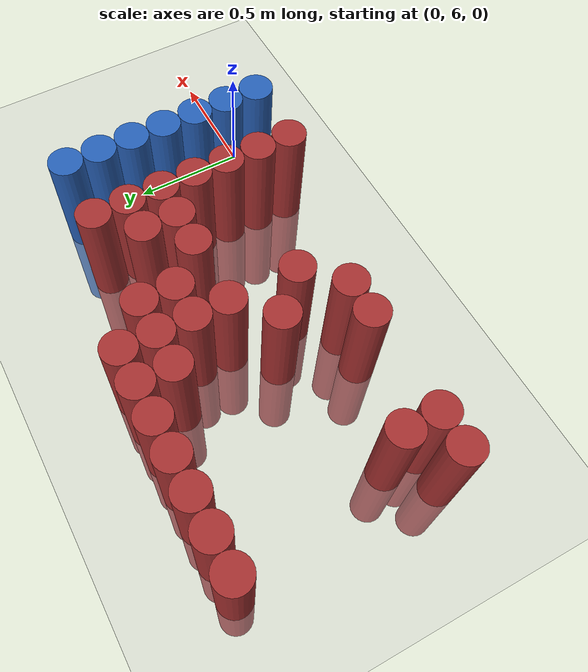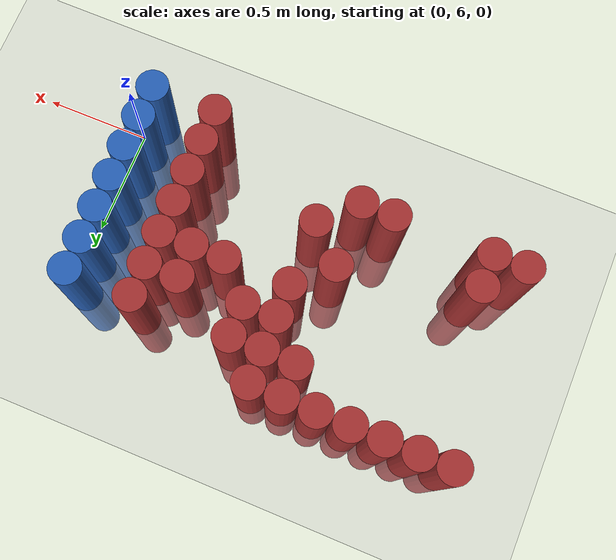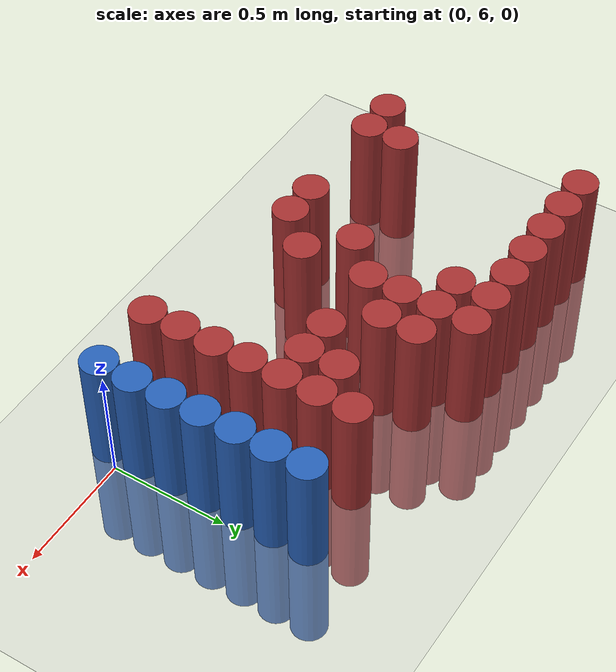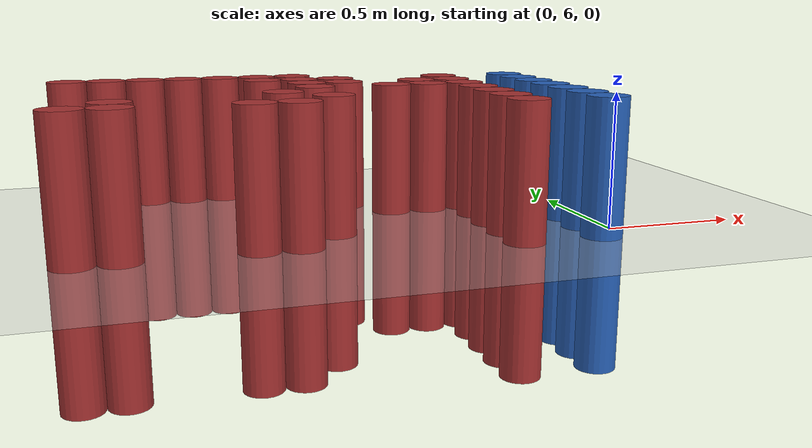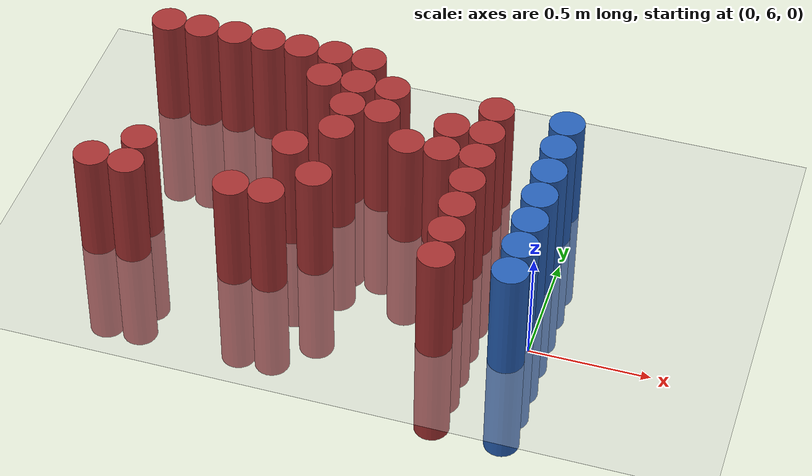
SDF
<sdf version="1.6">
 <world name="default">
  <model name="ground_plane">
   <static>1</static>
   <link name="link">
    <collision name="collision">
     <geometry><plane><normal>0 0 1</normal><size>100 100</size></plane></geometry>
     <surface><friction><ode><mu>100</mu><mu2>50</mu2></ode></friction></surface>
    </collision>
    <visual name="visual">
     <cast_shadows>0</cast_shadows>
     <geometry><plane><normal>0 0 1</normal><size>100 100</size></plane></geometry>
     <material>
      <script><uri>file://media/materials/scripts/gazebo.material</uri><name>Gazebo/Grey</name></script>
     </material>
    </visual>
   </link>
  </model>
  <model name="unit_cylinder_201">
   <static>1</static>
   <pose>-1.875000 6.075000 0.000000 0.000000 0.000000 0.000000</pose>
   <link name="link">
    <inertial>
     <mass>1</mass>
     <inertia><ixx>0.145833</ixx><ixy>0</ixy><ixz>0</ixz><iyy>0.145833</iyy><iyz>0</iyz><izz>0.125</izz></inertia>
    </inertial>
    <collision name="collision">
     <geometry><cylinder><radius>0.075000</radius><length>1</length></cylinder></geometry>
    </collision>
    <visual name="visual">
     <geometry><cylinder><radius>0.075000</radius><length>1</length></cylinder></geometry>
     <material>
      <ambient>0.648000 0.192000 0.192000 1</ambient>
      <diffuse>0.648000 0.192000 0.192000 1</diffuse>
     </material>
     <material>
      <script><name>Gazebo/Grey</name><uri>file://media/materials/scripts/gazebo.material</uri></script>
     </material>
    </visual>
    <sensor name="sensor_contact" type="contact"><contact><collision>collision</collision></contact></sensor>
   </link>
   <plugin filename="gz-sim-touchplugin-system" name="gz::sim::systems::TouchPlugin">
    <target>robot</target>
    <namespace>robot</namespace>
    <time>0.001</time>
    <enabled>true</enabled>
   </plugin>
  </model>
  <model name="unit_cylinder_202">
   <static>1</static>
   <pose>-1.875000 6.975000 0.000000 0.000000 0.000000 0.000000</pose>
   <link name="link">
    <inertial>
     <mass>1</mass>
     <inertia><ixx>0.145833</ixx><ixy>0</ixy><ixz>0</ixz><iyy>0.145833</iyy><iyz>0</iyz><izz>0.125</izz></inertia>
    </inertial>
    <collision name="collision">
     <geometry><cylinder><radius>0.075000</radius><length>1</length></cylinder></geometry>
    </collision>
    <visual name="visual">
     <geometry><cylinder><radius>0.075000</radius><length>1</length></cylinder></geometry>
     <material>
      <ambient>0.648000 0.192000 0.192000 1</ambient>
      <diffuse>0.648000 0.192000 0.192000 1</diffuse>
     </material>
     <material>
      <script><name>Gazebo/Grey</name><uri>file://media/materials/scripts/gazebo.material</uri></script>
     </material>
    </visual>
    <sensor name="sensor_contact" type="contact"><contact><collision>collision</collision></contact></sensor>
   </link>
   <plugin filename="gz-sim-touchplugin-system" name="gz::sim::systems::TouchPlugin">
    <target>robot</target>
    <namespace>robot</namespace>
    <time>0.001</time>
    <enabled>true</enabled>
   </plugin>
  </model>
  <model name="unit_cylinder_208">
   <static>1</static>
   <pose>-1.725000 6.075000 0.000000 0.000000 0.000000 0.000000</pose>
   <link name="link">
    <inertial>
     <mass>1</mass>
     <inertia><ixx>0.145833</ixx><ixy>0</ixy><ixz>0</ixz><iyy>0.145833</iyy><iyz>0</iyz><izz>0.125</izz></inertia>
    </inertial>
    <collision name="collision">
     <geometry><cylinder><radius>0.075000</radius><length>1</length></cylinder></geometry>
    </collision>
    <visual name="visual">
     <geometry><cylinder><radius>0.075000</radius><length>1</length></cylinder></geometry>
     <material>
      <ambient>0.648000 0.192000 0.192000 1</ambient>
      <diffuse>0.648000 0.192000 0.192000 1</diffuse>
     </material>
     <material>
      <script><name>Gazebo/Grey</name><uri>file://media/materials/scripts/gazebo.material</uri></script>
     </material>
    </visual>
    <sensor name="sensor_contact" type="contact"><contact><collision>collision</collision></contact></sensor>
   </link>
   <plugin filename="gz-sim-touchplugin-system" name="gz::sim::systems::TouchPlugin">
    <target>robot</target>
    <namespace>robot</namespace>
    <time>0.001</time>
    <enabled>true</enabled>
   </plugin>
  </model>
  <model name="unit_cylinder_209">
   <static>1</static>
   <pose>-1.725000 6.225000 0.000000 0.000000 0.000000 0.000000</pose>
   <link name="link">
    <inertial>
     <mass>1</mass>
     <inertia><ixx>0.145833</ixx><ixy>0</ixy><ixz>0</ixz><iyy>0.145833</iyy><iyz>0</iyz><izz>0.125</izz></inertia>
    </inertial>
    <collision name="collision">
     <geometry><cylinder><radius>0.075000</radius><length>1</length></cylinder></geometry>
    </collision>
    <visual name="visual">
     <geometry><cylinder><radius>0.075000</radius><length>1</length></cylinder></geometry>
     <material>
      <ambient>0.648000 0.192000 0.192000 1</ambient>
      <diffuse>0.648000 0.192000 0.192000 1</diffuse>
     </material>
     <material>
      <script><name>Gazebo/Grey</name><uri>file://media/materials/scripts/gazebo.material</uri></script>
     </material>
    </visual>
    <sensor name="sensor_contact" type="contact"><contact><collision>collision</collision></contact></sensor>
   </link>
   <plugin filename="gz-sim-touchplugin-system" name="gz::sim::systems::TouchPlugin">
    <target>robot</target>
    <namespace>robot</namespace>
    <time>0.001</time>
    <enabled>true</enabled>
   </plugin>
  </model>
  <model name="unit_cylinder_210">
   <static>1</static>
   <pose>-1.725000 6.975000 0.000000 0.000000 0.000000 0.000000</pose>
   <link name="link">
    <inertial>
     <mass>1</mass>
     <inertia><ixx>0.145833</ixx><ixy>0</ixy><ixz>0</ixz><iyy>0.145833</iyy><iyz>0</iyz><izz>0.125</izz></inertia>
    </inertial>
    <collision name="collision">
     <geometry><cylinder><radius>0.075000</radius><length>1</length></cylinder></geometry>
    </collision>
    <visual name="visual">
     <geometry><cylinder><radius>0.075000</radius><length>1</length></cylinder></geometry>
     <material>
      <ambient>0.648000 0.192000 0.192000 1</ambient>
      <diffuse>0.648000 0.192000 0.192000 1</diffuse>
     </material>
     <material>
      <script><name>Gazebo/Grey</name><uri>file://media/materials/scripts/gazebo.material</uri></script>
     </material>
    </visual>
    <sensor name="sensor_contact" type="contact"><contact><collision>collision</collision></contact></sensor>
   </link>
   <plugin filename="gz-sim-touchplugin-system" name="gz::sim::systems::TouchPlugin">
    <target>robot</target>
    <namespace>robot</namespace>
    <time>0.001</time>
    <enabled>true</enabled>
   </plugin>
  </model>
  <model name="unit_cylinder_216">
   <static>1</static>
   <pose>-1.575000 6.975000 0.000000 0.000000 0.000000 0.000000</pose>
   <link name="link">
    <inertial>
     <mass>1</mass>
     <inertia><ixx>0.145833</ixx><ixy>0</ixy><ixz>0</ixz><iyy>0.145833</iyy><iyz>0</iyz><izz>0.125</izz></inertia>
    </inertial>
    <collision name="collision">
     <geometry><cylinder><radius>0.075000</radius><length>1</length></cylinder></geometry>
    </collision>
    <visual name="visual">
     <geometry><cylinder><radius>0.075000</radius><length>1</length></cylinder></geometry>
     <material>
      <ambient>0.648000 0.192000 0.192000 1</ambient>
      <diffuse>0.648000 0.192000 0.192000 1</diffuse>
     </material>
     <material>
      <script><name>Gazebo/Grey</name><uri>file://media/materials/scripts/gazebo.material</uri></script>
     </material>
    </visual>
    <sensor name="sensor_contact" type="contact"><contact><collision>collision</collision></contact></sensor>
   </link>
   <plugin filename="gz-sim-touchplugin-system" name="gz::sim::systems::TouchPlugin">
    <target>robot</target>
    <namespace>robot</namespace>
    <time>0.001</time>
    <enabled>true</enabled>
   </plugin>
  </model>
  <model name="unit_cylinder_226">
   <static>1</static>
   <pose>-1.425000 6.975000 0.000000 0.000000 0.000000 0.000000</pose>
   <link name="link">
    <inertial>
     <mass>1</mass>
     <inertia><ixx>0.145833</ixx><ixy>0</ixy><ixz>0</ixz><iyy>0.145833</iyy><iyz>0</iyz><izz>0.125</izz></inertia>
    </inertial>
    <collision name="collision">
     <geometry><cylinder><radius>0.075000</radius><length>1</length></cylinder></geometry>
    </collision>
    <visual name="visual">
     <geometry><cylinder><radius>0.075000</radius><length>1</length></cylinder></geometry>
     <material>
      <ambient>0.648000 0.192000 0.192000 1</ambient>
      <diffuse>0.648000 0.192000 0.192000 1</diffuse>
     </material>
     <material>
      <script><name>Gazebo/Grey</name><uri>file://media/materials/scripts/gazebo.material</uri></script>
     </material>
    </visual>
    <sensor name="sensor_contact" type="contact"><contact><collision>collision</collision></contact></sensor>
   </link>
   <plugin filename="gz-sim-touchplugin-system" name="gz::sim::systems::TouchPlugin">
    <target>robot</target>
    <namespace>robot</namespace>
    <time>0.001</time>
    <enabled>true</enabled>
   </plugin>
  </model>
  <model name="unit_cylinder_231">
   <static>1</static>
   <pose>-1.275000 6.075000 0.000000 0.000000 0.000000 0.000000</pose>
   <link name="link">
    <inertial>
     <mass>1</mass>
     <inertia><ixx>0.145833</ixx><ixy>0</ixy><ixz>0</ixz><iyy>0.145833</iyy><iyz>0</iyz><izz>0.125</izz></inertia>
    </inertial>
    <collision name="collision">
     <geometry><cylinder><radius>0.075000</radius><length>1</length></cylinder></geometry>
    </collision>
    <visual name="visual">
     <geometry><cylinder><radius>0.075000</radius><length>1</length></cylinder></geometry>
     <material>
      <ambient>0.648000 0.192000 0.192000 1</ambient>
      <diffuse>0.648000 0.192000 0.192000 1</diffuse>
     </material>
     <material>
      <script><name>Gazebo/Grey</name><uri>file://media/materials/scripts/gazebo.material</uri></script>
     </material>
    </visual>
    <sensor name="sensor_contact" type="contact"><contact><collision>collision</collision></contact></sensor>
   </link>
   <plugin filename="gz-sim-touchplugin-system" name="gz::sim::systems::TouchPlugin">
    <target>robot</target>
    <namespace>robot</namespace>
    <time>0.001</time>
    <enabled>true</enabled>
   </plugin>
  </model>
  <model name="unit_cylinder_232">
   <static>1</static>
   <pose>-1.275000 6.975000 0.000000 0.000000 0.000000 0.000000</pose>
   <link name="link">
    <inertial>
     <mass>1</mass>
     <inertia><ixx>0.145833</ixx><ixy>0</ixy><ixz>0</ixz><iyy>0.145833</iyy><iyz>0</iyz><izz>0.125</izz></inertia>
    </inertial>
    <collision name="collision">
     <geometry><cylinder><radius>0.075000</radius><length>1</length></cylinder></geometry>
    </collision>
    <visual name="visual">
     <geometry><cylinder><radius>0.075000</radius><length>1</length></cylinder></geometry>
     <material>
      <ambient>0.648000 0.192000 0.192000 1</ambient>
      <diffuse>0.648000 0.192000 0.192000 1</diffuse>
     </material>
     <material>
      <script><name>Gazebo/Grey</name><uri>file://media/materials/scripts/gazebo.material</uri></script>
     </material>
    </visual>
    <sensor name="sensor_contact" type="contact"><contact><collision>collision</collision></contact></sensor>
   </link>
   <plugin filename="gz-sim-touchplugin-system" name="gz::sim::systems::TouchPlugin">
    <target>robot</target>
    <namespace>robot</namespace>
    <time>0.001</time>
    <enabled>true</enabled>
   </plugin>
  </model>
  <model name="unit_cylinder_236">
   <static>1</static>
   <pose>-1.125000 6.075000 0.000000 0.000000 0.000000 0.000000</pose>
   <link name="link">
    <inertial>
     <mass>1</mass>
     <inertia><ixx>0.145833</ixx><ixy>0</ixy><ixz>0</ixz><iyy>0.145833</iyy><iyz>0</iyz><izz>0.125</izz></inertia>
    </inertial>
    <collision name="collision">
     <geometry><cylinder><radius>0.075000</radius><length>1</length></cylinder></geometry>
    </collision>
    <visual name="visual">
     <geometry><cylinder><radius>0.075000</radius><length>1</length></cylinder></geometry>
     <material>
      <ambient>0.648000 0.192000 0.192000 1</ambient>
      <diffuse>0.648000 0.192000 0.192000 1</diffuse>
     </material>
     <material>
      <script><name>Gazebo/Grey</name><uri>file://media/materials/scripts/gazebo.material</uri></script>
     </material>
    </visual>
    <sensor name="sensor_contact" type="contact"><contact><collision>collision</collision></contact></sensor>
   </link>
   <plugin filename="gz-sim-touchplugin-system" name="gz::sim::systems::TouchPlugin">
    <target>robot</target>
    <namespace>robot</namespace>
    <time>0.001</time>
    <enabled>true</enabled>
   </plugin>
  </model>
  <model name="unit_cylinder_237">
   <static>1</static>
   <pose>-1.125000 6.375000 0.000000 0.000000 0.000000 0.000000</pose>
   <link name="link">
    <inertial>
     <mass>1</mass>
     <inertia><ixx>0.145833</ixx><ixy>0</ixy><ixz>0</ixz><iyy>0.145833</iyy><iyz>0</iyz><izz>0.125</izz></inertia>
    </inertial>
    <collision name="collision">
     <geometry><cylinder><radius>0.075000</radius><length>1</length></cylinder></geometry>
    </collision>
    <visual name="visual">
     <geometry><cylinder><radius>0.075000</radius><length>1</length></cylinder></geometry>
     <material>
      <ambient>0.648000 0.192000 0.192000 1</ambient>
      <diffuse>0.648000 0.192000 0.192000 1</diffuse>
     </material>
     <material>
      <script><name>Gazebo/Grey</name><uri>file://media/materials/scripts/gazebo.material</uri></script>
     </material>
    </visual>
    <sensor name="sensor_contact" type="contact"><contact><collision>collision</collision></contact></sensor>
   </link>
   <plugin filename="gz-sim-touchplugin-system" name="gz::sim::systems::TouchPlugin">
    <target>robot</target>
    <namespace>robot</namespace>
    <time>0.001</time>
    <enabled>true</enabled>
   </plugin>
  </model>
  <model name="unit_cylinder_238">
   <static>1</static>
   <pose>-1.125000 6.825000 0.000000 0.000000 0.000000 0.000000</pose>
   <link name="link">
    <inertial>
     <mass>1</mass>
     <inertia><ixx>0.145833</ixx><ixy>0</ixy><ixz>0</ixz><iyy>0.145833</iyy><iyz>0</iyz><izz>0.125</izz></inertia>
    </inertial>
    <collision name="collision">
     <geometry><cylinder><radius>0.075000</radius><length>1</length></cylinder></geometry>
    </collision>
    <visual name="visual">
     <geometry><cylinder><radius>0.075000</radius><length>1</length></cylinder></geometry>
     <material>
      <ambient>0.648000 0.192000 0.192000 1</ambient>
      <diffuse>0.648000 0.192000 0.192000 1</diffuse>
     </material>
     <material>
      <script><name>Gazebo/Grey</name><uri>file://media/materials/scripts/gazebo.material</uri></script>
     </material>
    </visual>
    <sensor name="sensor_contact" type="contact"><contact><collision>collision</collision></contact></sensor>
   </link>
   <plugin filename="gz-sim-touchplugin-system" name="gz::sim::systems::TouchPlugin">
    <target>robot</target>
    <namespace>robot</namespace>
    <time>0.001</time>
    <enabled>true</enabled>
   </plugin>
  </model>
  <model name="unit_cylinder_239">
   <static>1</static>
   <pose>-1.125000 6.975000 0.000000 0.000000 0.000000 0.000000</pose>
   <link name="link">
    <inertial>
     <mass>1</mass>
     <inertia><ixx>0.145833</ixx><ixy>0</ixy><ixz>0</ixz><iyy>0.145833</iyy><iyz>0</iyz><izz>0.125</izz></inertia>
    </inertial>
    <collision name="collision">
     <geometry><cylinder><radius>0.075000</radius><length>1</length></cylinder></geometry>
    </collision>
    <visual name="visual">
     <geometry><cylinder><radius>0.075000</radius><length>1</length></cylinder></geometry>
     <material>
      <ambient>0.648000 0.192000 0.192000 1</ambient>
      <diffuse>0.648000 0.192000 0.192000 1</diffuse>
     </material>
     <material>
      <script><name>Gazebo/Grey</name><uri>file://media/materials/scripts/gazebo.material</uri></script>
     </material>
    </visual>
    <sensor name="sensor_contact" type="contact"><contact><collision>collision</collision></contact></sensor>
   </link>
   <plugin filename="gz-sim-touchplugin-system" name="gz::sim::systems::TouchPlugin">
    <target>robot</target>
    <namespace>robot</namespace>
    <time>0.001</time>
    <enabled>true</enabled>
   </plugin>
  </model>
  <model name="unit_cylinder_245">
   <static>1</static>
   <pose>-0.975000 6.225000 0.000000 0.000000 0.000000 0.000000</pose>
   <link name="link">
    <inertial>
     <mass>1</mass>
     <inertia><ixx>0.145833</ixx><ixy>0</ixy><ixz>0</ixz><iyy>0.145833</iyy><iyz>0</iyz><izz>0.125</izz></inertia>
    </inertial>
    <collision name="collision">
     <geometry><cylinder><radius>0.075000</radius><length>1</length></cylinder></geometry>
    </collision>
    <visual name="visual">
     <geometry><cylinder><radius>0.075000</radius><length>1</length></cylinder></geometry>
     <material>
      <ambient>0.648000 0.192000 0.192000 1</ambient>
      <diffuse>0.648000 0.192000 0.192000 1</diffuse>
     </material>
     <material>
      <script><name>Gazebo/Grey</name><uri>file://media/materials/scripts/gazebo.material</uri></script>
     </material>
    </visual>
    <sensor name="sensor_contact" type="contact"><contact><collision>collision</collision></contact></sensor>
   </link>
   <plugin filename="gz-sim-touchplugin-system" name="gz::sim::systems::TouchPlugin">
    <target>robot</target>
    <namespace>robot</namespace>
    <time>0.001</time>
    <enabled>true</enabled>
   </plugin>
  </model>
  <model name="unit_cylinder_246">
   <static>1</static>
   <pose>-0.975000 6.525000 0.000000 0.000000 0.000000 0.000000</pose>
   <link name="link">
    <inertial>
     <mass>1</mass>
     <inertia><ixx>0.145833</ixx><ixy>0</ixy><ixz>0</ixz><iyy>0.145833</iyy><iyz>0</iyz><izz>0.125</izz></inertia>
    </inertial>
    <collision name="collision">
     <geometry><cylinder><radius>0.075000</radius><length>1</length></cylinder></geometry>
    </collision>
    <visual name="visual">
     <geometry><cylinder><radius>0.075000</radius><length>1</length></cylinder></geometry>
     <material>
      <ambient>0.648000 0.192000 0.192000 1</ambient>
      <diffuse>0.648000 0.192000 0.192000 1</diffuse>
     </material>
     <material>
      <script><name>Gazebo/Grey</name><uri>file://media/materials/scripts/gazebo.material</uri></script>
     </material>
    </visual>
    <sensor name="sensor_contact" type="contact"><contact><collision>collision</collision></contact></sensor>
   </link>
   <plugin filename="gz-sim-touchplugin-system" name="gz::sim::systems::TouchPlugin">
    <target>robot</target>
    <namespace>robot</namespace>
    <time>0.001</time>
    <enabled>true</enabled>
   </plugin>
  </model>
  <model name="unit_cylinder_247">
   <static>1</static>
   <pose>-0.975000 6.675000 0.000000 0.000000 0.000000 0.000000</pose>
   <link name="link">
    <inertial>
     <mass>1</mass>
     <inertia><ixx>0.145833</ixx><ixy>0</ixy><ixz>0</ixz><iyy>0.145833</iyy><iyz>0</iyz><izz>0.125</izz></inertia>
    </inertial>
    <collision name="collision">
     <geometry><cylinder><radius>0.075000</radius><length>1</length></cylinder></geometry>
    </collision>
    <visual name="visual">
     <geometry><cylinder><radius>0.075000</radius><length>1</length></cylinder></geometry>
     <material>
      <ambient>0.648000 0.192000 0.192000 1</ambient>
      <diffuse>0.648000 0.192000 0.192000 1</diffuse>
     </material>
     <material>
      <script><name>Gazebo/Grey</name><uri>file://media/materials/scripts/gazebo.material</uri></script>
     </material>
    </visual>
    <sensor name="sensor_contact" type="contact"><contact><collision>collision</collision></contact></sensor>
   </link>
   <plugin filename="gz-sim-touchplugin-system" name="gz::sim::systems::TouchPlugin">
    <target>robot</target>
    <namespace>robot</namespace>
    <time>0.001</time>
    <enabled>true</enabled>
   </plugin>
  </model>
  <model name="unit_cylinder_248">
   <static>1</static>
   <pose>-0.975000 6.825000 0.000000 0.000000 0.000000 0.000000</pose>
   <link name="link">
    <inertial>
     <mass>1</mass>
     <inertia><ixx>0.145833</ixx><ixy>0</ixy><ixz>0</ixz><iyy>0.145833</iyy><iyz>0</iyz><izz>0.125</izz></inertia>
    </inertial>
    <collision name="collision">
     <geometry><cylinder><radius>0.075000</radius><length>1</length></cylinder></geometry>
    </collision>
    <visual name="visual">
     <geometry><cylinder><radius>0.075000</radius><length>1</length></cylinder></geometry>
     <material>
      <ambient>0.648000 0.192000 0.192000 1</ambient>
      <diffuse>0.648000 0.192000 0.192000 1</diffuse>
     </material>
     <material>
      <script><name>Gazebo/Grey</name><uri>file://media/materials/scripts/gazebo.material</uri></script>
     </material>
    </visual>
    <sensor name="sensor_contact" type="contact"><contact><collision>collision</collision></contact></sensor>
   </link>
   <plugin filename="gz-sim-touchplugin-system" name="gz::sim::systems::TouchPlugin">
    <target>robot</target>
    <namespace>robot</namespace>
    <time>0.001</time>
    <enabled>true</enabled>
   </plugin>
  </model>
  <model name="unit_cylinder_249">
   <static>1</static>
   <pose>-0.975000 6.975000 0.000000 0.000000 0.000000 0.000000</pose>
   <link name="link">
    <inertial>
     <mass>1</mass>
     <inertia><ixx>0.145833</ixx><ixy>0</ixy><ixz>0</ixz><iyy>0.145833</iyy><iyz>0</iyz><izz>0.125</izz></inertia>
    </inertial>
    <collision name="collision">
     <geometry><cylinder><radius>0.075000</radius><length>1</length></cylinder></geometry>
    </collision>
    <visual name="visual">
     <geometry><cylinder><radius>0.075000</radius><length>1</length></cylinder></geometry>
     <material>
      <ambient>0.648000 0.192000 0.192000 1</ambient>
      <diffuse>0.648000 0.192000 0.192000 1</diffuse>
     </material>
     <material>
      <script><name>Gazebo/Grey</name><uri>file://media/materials/scripts/gazebo.material</uri></script>
     </material>
    </visual>
    <sensor name="sensor_contact" type="contact"><contact><collision>collision</collision></contact></sensor>
   </link>
   <plugin filename="gz-sim-touchplugin-system" name="gz::sim::systems::TouchPlugin">
    <target>robot</target>
    <namespace>robot</namespace>
    <time>0.001</time>
    <enabled>true</enabled>
   </plugin>
  </model>
  <model name="unit_cylinder_255">
   <static>1</static>
   <pose>-0.825000 6.675000 0.000000 0.000000 0.000000 0.000000</pose>
   <link name="link">
    <inertial>
     <mass>1</mass>
     <inertia><ixx>0.145833</ixx><ixy>0</ixy><ixz>0</ixz><iyy>0.145833</iyy><iyz>0</iyz><izz>0.125</izz></inertia>
    </inertial>
    <collision name="collision">
     <geometry><cylinder><radius>0.075000</radius><length>1</length></cylinder></geometry>
    </collision>
    <visual name="visual">
     <geometry><cylinder><radius>0.075000</radius><length>1</length></cylinder></geometry>
     <material>
      <ambient>0.648000 0.192000 0.192000 1</ambient>
      <diffuse>0.648000 0.192000 0.192000 1</diffuse>
     </material>
     <material>
      <script><name>Gazebo/Grey</name><uri>file://media/materials/scripts/gazebo.material</uri></script>
     </material>
    </visual>
    <sensor name="sensor_contact" type="contact"><contact><collision>collision</collision></contact></sensor>
   </link>
   <plugin filename="gz-sim-touchplugin-system" name="gz::sim::systems::TouchPlugin">
    <target>robot</target>
    <namespace>robot</namespace>
    <time>0.001</time>
    <enabled>true</enabled>
   </plugin>
  </model>
  <model name="unit_cylinder_256">
   <static>1</static>
   <pose>-0.825000 6.825000 0.000000 0.000000 0.000000 0.000000</pose>
   <link name="link">
    <inertial>
     <mass>1</mass>
     <inertia><ixx>0.145833</ixx><ixy>0</ixy><ixz>0</ixz><iyy>0.145833</iyy><iyz>0</iyz><izz>0.125</izz></inertia>
    </inertial>
    <collision name="collision">
     <geometry><cylinder><radius>0.075000</radius><length>1</length></cylinder></geometry>
    </collision>
    <visual name="visual">
     <geometry><cylinder><radius>0.075000</radius><length>1</length></cylinder></geometry>
     <material>
      <ambient>0.648000 0.192000 0.192000 1</ambient>
      <diffuse>0.648000 0.192000 0.192000 1</diffuse>
     </material>
     <material>
      <script><name>Gazebo/Grey</name><uri>file://media/materials/scripts/gazebo.material</uri></script>
     </material>
    </visual>
    <sensor name="sensor_contact" type="contact"><contact><collision>collision</collision></contact></sensor>
   </link>
   <plugin filename="gz-sim-touchplugin-system" name="gz::sim::systems::TouchPlugin">
    <target>robot</target>
    <namespace>robot</namespace>
    <time>0.001</time>
    <enabled>true</enabled>
   </plugin>
  </model>
  <model name="unit_cylinder_264">
   <static>1</static>
   <pose>-0.675000 6.525000 0.000000 0.000000 0.000000 0.000000</pose>
   <link name="link">
    <inertial>
     <mass>1</mass>
     <inertia><ixx>0.145833</ixx><ixy>0</ixy><ixz>0</ixz><iyy>0.145833</iyy><iyz>0</iyz><izz>0.125</izz></inertia>
    </inertial>
    <collision name="collision">
     <geometry><cylinder><radius>0.075000</radius><length>1</length></cylinder></geometry>
    </collision>
    <visual name="visual">
     <geometry><cylinder><radius>0.075000</radius><length>1</length></cylinder></geometry>
     <material>
      <ambient>0.648000 0.192000 0.192000 1</ambient>
      <diffuse>0.648000 0.192000 0.192000 1</diffuse>
     </material>
     <material>
      <script><name>Gazebo/Grey</name><uri>file://media/materials/scripts/gazebo.material</uri></script>
     </material>
    </visual>
    <sensor name="sensor_contact" type="contact"><contact><collision>collision</collision></contact></sensor>
   </link>
   <plugin filename="gz-sim-touchplugin-system" name="gz::sim::systems::TouchPlugin">
    <target>robot</target>
    <namespace>robot</namespace>
    <time>0.001</time>
    <enabled>true</enabled>
   </plugin>
  </model>
  <model name="unit_cylinder_275">
   <static>1</static>
   <pose>-0.525000 6.525000 0.000000 0.000000 0.000000 0.000000</pose>
   <link name="link">
    <inertial>
     <mass>1</mass>
     <inertia><ixx>0.145833</ixx><ixy>0</ixy><ixz>0</ixz><iyy>0.145833</iyy><iyz>0</iyz><izz>0.125</izz></inertia>
    </inertial>
    <collision name="collision">
     <geometry><cylinder><radius>0.075000</radius><length>1</length></cylinder></geometry>
    </collision>
    <visual name="visual">
     <geometry><cylinder><radius>0.075000</radius><length>1</length></cylinder></geometry>
     <material>
      <ambient>0.648000 0.192000 0.192000 1</ambient>
      <diffuse>0.648000 0.192000 0.192000 1</diffuse>
     </material>
     <material>
      <script><name>Gazebo/Grey</name><uri>file://media/materials/scripts/gazebo.material</uri></script>
     </material>
    </visual>
    <sensor name="sensor_contact" type="contact"><contact><collision>collision</collision></contact></sensor>
   </link>
   <plugin filename="gz-sim-touchplugin-system" name="gz::sim::systems::TouchPlugin">
    <target>robot</target>
    <namespace>robot</namespace>
    <time>0.001</time>
    <enabled>true</enabled>
   </plugin>
  </model>
  <model name="unit_cylinder_276">
   <static>1</static>
   <pose>-0.525000 6.675000 0.000000 0.000000 0.000000 0.000000</pose>
   <link name="link">
    <inertial>
     <mass>1</mass>
     <inertia><ixx>0.145833</ixx><ixy>0</ixy><ixz>0</ixz><iyy>0.145833</iyy><iyz>0</iyz><izz>0.125</izz></inertia>
    </inertial>
    <collision name="collision">
     <geometry><cylinder><radius>0.075000</radius><length>1</length></cylinder></geometry>
    </collision>
    <visual name="visual">
     <geometry><cylinder><radius>0.075000</radius><length>1</length></cylinder></geometry>
     <material>
      <ambient>0.648000 0.192000 0.192000 1</ambient>
      <diffuse>0.648000 0.192000 0.192000 1</diffuse>
     </material>
     <material>
      <script><name>Gazebo/Grey</name><uri>file://media/materials/scripts/gazebo.material</uri></script>
     </material>
    </visual>
    <sensor name="sensor_contact" type="contact"><contact><collision>collision</collision></contact></sensor>
   </link>
   <plugin filename="gz-sim-touchplugin-system" name="gz::sim::systems::TouchPlugin">
    <target>robot</target>
    <namespace>robot</namespace>
    <time>0.001</time>
    <enabled>true</enabled>
   </plugin>
  </model>
  <model name="unit_cylinder_281">
   <static>1</static>
   <pose>-0.375000 5.925000 0.000000 0.000000 0.000000 0.000000</pose>
   <link name="link">
    <inertial>
     <mass>1</mass>
     <inertia><ixx>0.145833</ixx><ixy>0</ixy><ixz>0</ixz><iyy>0.145833</iyy><iyz>0</iyz><izz>0.125</izz></inertia>
    </inertial>
    <collision name="collision">
     <geometry><cylinder><radius>0.075000</radius><length>1</length></cylinder></geometry>
    </collision>
    <visual name="visual">
     <geometry><cylinder><radius>0.075000</radius><length>1</length></cylinder></geometry>
     <material>
      <ambient>0.648000 0.192000 0.192000 1</ambient>
      <diffuse>0.648000 0.192000 0.192000 1</diffuse>
     </material>
     <material>
      <script><name>Gazebo/Grey</name><uri>file://media/materials/scripts/gazebo.material</uri></script>
     </material>
    </visual>
    <sensor name="sensor_contact" type="contact"><contact><collision>collision</collision></contact></sensor>
   </link>
   <plugin filename="gz-sim-touchplugin-system" name="gz::sim::systems::TouchPlugin">
    <target>robot</target>
    <namespace>robot</namespace>
    <time>0.001</time>
    <enabled>true</enabled>
   </plugin>
  </model>
  <model name="unit_cylinder_282">
   <static>1</static>
   <pose>-0.375000 6.075000 0.000000 0.000000 0.000000 0.000000</pose>
   <link name="link">
    <inertial>
     <mass>1</mass>
     <inertia><ixx>0.145833</ixx><ixy>0</ixy><ixz>0</ixz><iyy>0.145833</iyy><iyz>0</iyz><izz>0.125</izz></inertia>
    </inertial>
    <collision name="collision">
     <geometry><cylinder><radius>0.075000</radius><length>1</length></cylinder></geometry>
    </collision>
    <visual name="visual">
     <geometry><cylinder><radius>0.075000</radius><length>1</length></cylinder></geometry>
     <material>
      <ambient>0.648000 0.192000 0.192000 1</ambient>
      <diffuse>0.648000 0.192000 0.192000 1</diffuse>
     </material>
     <material>
      <script><name>Gazebo/Grey</name><uri>file://media/materials/scripts/gazebo.material</uri></script>
     </material>
    </visual>
    <sensor name="sensor_contact" type="contact"><contact><collision>collision</collision></contact></sensor>
   </link>
   <plugin filename="gz-sim-touchplugin-system" name="gz::sim::systems::TouchPlugin">
    <target>robot</target>
    <namespace>robot</namespace>
    <time>0.001</time>
    <enabled>true</enabled>
   </plugin>
  </model>
  <model name="unit_cylinder_283">
   <static>1</static>
   <pose>-0.375000 6.225000 0.000000 0.000000 0.000000 0.000000</pose>
   <link name="link">
    <inertial>
     <mass>1</mass>
     <inertia><ixx>0.145833</ixx><ixy>0</ixy><ixz>0</ixz><iyy>0.145833</iyy><iyz>0</iyz><izz>0.125</izz></inertia>
    </inertial>
    <collision name="collision">
     <geometry><cylinder><radius>0.075000</radius><length>1</length></cylinder></geometry>
    </collision>
    <visual name="visual">
     <geometry><cylinder><radius>0.075000</radius><length>1</length></cylinder></geometry>
     <material>
      <ambient>0.648000 0.192000 0.192000 1</ambient>
      <diffuse>0.648000 0.192000 0.192000 1</diffuse>
     </material>
     <material>
      <script><name>Gazebo/Grey</name><uri>file://media/materials/scripts/gazebo.material</uri></script>
     </material>
    </visual>
    <sensor name="sensor_contact" type="contact"><contact><collision>collision</collision></contact></sensor>
   </link>
   <plugin filename="gz-sim-touchplugin-system" name="gz::sim::systems::TouchPlugin">
    <target>robot</target>
    <namespace>robot</namespace>
    <time>0.001</time>
    <enabled>true</enabled>
   </plugin>
  </model>
  <model name="unit_cylinder_284">
   <static>1</static>
   <pose>-0.375000 6.375000 0.000000 0.000000 0.000000 0.000000</pose>
   <link name="link">
    <inertial>
     <mass>1</mass>
     <inertia><ixx>0.145833</ixx><ixy>0</ixy><ixz>0</ixz><iyy>0.145833</iyy><iyz>0</iyz><izz>0.125</izz></inertia>
    </inertial>
    <collision name="collision">
     <geometry><cylinder><radius>0.075000</radius><length>1</length></cylinder></geometry>
    </collision>
    <visual name="visual">
     <geometry><cylinder><radius>0.075000</radius><length>1</length></cylinder></geometry>
     <material>
      <ambient>0.648000 0.192000 0.192000 1</ambient>
      <diffuse>0.648000 0.192000 0.192000 1</diffuse>
     </material>
     <material>
      <script><name>Gazebo/Grey</name><uri>file://media/materials/scripts/gazebo.material</uri></script>
     </material>
    </visual>
    <sensor name="sensor_contact" type="contact"><contact><collision>collision</collision></contact></sensor>
   </link>
   <plugin filename="gz-sim-touchplugin-system" name="gz::sim::systems::TouchPlugin">
    <target>robot</target>
    <namespace>robot</namespace>
    <time>0.001</time>
    <enabled>true</enabled>
   </plugin>
  </model>
  <model name="unit_cylinder_285">
   <static>1</static>
   <pose>-0.375000 6.525000 0.000000 0.000000 0.000000 0.000000</pose>
   <link name="link">
    <inertial>
     <mass>1</mass>
     <inertia><ixx>0.145833</ixx><ixy>0</ixy><ixz>0</ixz><iyy>0.145833</iyy><iyz>0</iyz><izz>0.125</izz></inertia>
    </inertial>
    <collision name="collision">
     <geometry><cylinder><radius>0.075000</radius><length>1</length></cylinder></geometry>
    </collision>
    <visual name="visual">
     <geometry><cylinder><radius>0.075000</radius><length>1</length></cylinder></geometry>
     <material>
      <ambient>0.648000 0.192000 0.192000 1</ambient>
      <diffuse>0.648000 0.192000 0.192000 1</diffuse>
     </material>
     <material>
      <script><name>Gazebo/Grey</name><uri>file://media/materials/scripts/gazebo.material</uri></script>
     </material>
    </visual>
    <sensor name="sensor_contact" type="contact"><contact><collision>collision</collision></contact></sensor>
   </link>
   <plugin filename="gz-sim-touchplugin-system" name="gz::sim::systems::TouchPlugin">
    <target>robot</target>
    <namespace>robot</namespace>
    <time>0.001</time>
    <enabled>true</enabled>
   </plugin>
  </model>
  <model name="unit_cylinder_286">
   <static>1</static>
   <pose>-0.375000 6.675000 0.000000 0.000000 0.000000 0.000000</pose>
   <link name="link">
    <inertial>
     <mass>1</mass>
     <inertia><ixx>0.145833</ixx><ixy>0</ixy><ixz>0</ixz><iyy>0.145833</iyy><iyz>0</iyz><izz>0.125</izz></inertia>
    </inertial>
    <collision name="collision">
     <geometry><cylinder><radius>0.075000</radius><length>1</length></cylinder></geometry>
    </collision>
    <visual name="visual">
     <geometry><cylinder><radius>0.075000</radius><length>1</length></cylinder></geometry>
     <material>
      <ambient>0.648000 0.192000 0.192000 1</ambient>
      <diffuse>0.648000 0.192000 0.192000 1</diffuse>
     </material>
     <material>
      <script><name>Gazebo/Grey</name><uri>file://media/materials/scripts/gazebo.material</uri></script>
     </material>
    </visual>
    <sensor name="sensor_contact" type="contact"><contact><collision>collision</collision></contact></sensor>
   </link>
   <plugin filename="gz-sim-touchplugin-system" name="gz::sim::systems::TouchPlugin">
    <target>robot</target>
    <namespace>robot</namespace>
    <time>0.001</time>
    <enabled>true</enabled>
   </plugin>
  </model>
  <model name="unit_cylinder_287">
   <static>1</static>
   <pose>-0.375000 6.825000 0.000000 0.000000 0.000000 0.000000</pose>
   <link name="link">
    <inertial>
     <mass>1</mass>
     <inertia><ixx>0.145833</ixx><ixy>0</ixy><ixz>0</ixz><iyy>0.145833</iyy><iyz>0</iyz><izz>0.125</izz></inertia>
    </inertial>
    <collision name="collision">
     <geometry><cylinder><radius>0.075000</radius><length>1</length></cylinder></geometry>
    </collision>
    <visual name="visual">
     <geometry><cylinder><radius>0.075000</radius><length>1</length></cylinder></geometry>
     <material>
      <ambient>0.648000 0.192000 0.192000 1</ambient>
      <diffuse>0.648000 0.192000 0.192000 1</diffuse>
     </material>
     <material>
      <script><name>Gazebo/Grey</name><uri>file://media/materials/scripts/gazebo.material</uri></script>
     </material>
    </visual>
    <sensor name="sensor_contact" type="contact"><contact><collision>collision</collision></contact></sensor>
   </link>
   <plugin filename="gz-sim-touchplugin-system" name="gz::sim::systems::TouchPlugin">
    <target>robot</target>
    <namespace>robot</namespace>
    <time>0.001</time>
    <enabled>true</enabled>
   </plugin>
  </model>
  <model name="unit_cylinder_311">
   <static>1</static>
   <pose>-0.075000 5.925000 0.000000 0.000000 0.000000 0.000000</pose>
   <link name="link">
    <inertial>
     <mass>1</mass>
     <inertia><ixx>0.145833</ixx><ixy>0</ixy><ixz>0</ixz><iyy>0.145833</iyy><iyz>0</iyz><izz>0.125</izz></inertia>
    </inertial>
    <collision name="collision">
     <geometry><cylinder><radius>0.075000</radius><length>1</length></cylinder></geometry>
    </collision>
    <visual name="visual">
     <geometry><cylinder><radius>0.075000</radius><length>1</length></cylinder></geometry>
     <material>
      <ambient>0.152000 0.379000 0.720000 1</ambient>
      <diffuse>0.152000 0.379000 0.720000 1</diffuse>
     </material>
     <material>
      <script><name>Gazebo/Grey</name><uri>file://media/materials/scripts/gazebo.material</uri></script>
     </material>
    </visual>
    <sensor name="sensor_contact" type="contact"><contact><collision>collision</collision></contact></sensor>
   </link>
   <plugin filename="gz-sim-touchplugin-system" name="gz::sim::systems::TouchPlugin">
    <target>robot</target>
    <namespace>robot</namespace>
    <time>0.001</time>
    <enabled>true</enabled>
   </plugin>
  </model>
  <model name="unit_cylinder_312">
   <static>1</static>
   <pose>-0.075000 6.075000 0.000000 0.000000 0.000000 0.000000</pose>
   <link name="link">
    <inertial>
     <mass>1</mass>
     <inertia><ixx>0.145833</ixx><ixy>0</ixy><ixz>0</ixz><iyy>0.145833</iyy><iyz>0</iyz><izz>0.125</izz></inertia>
    </inertial>
    <collision name="collision">
     <geometry><cylinder><radius>0.075000</radius><length>1</length></cylinder></geometry>
    </collision>
    <visual name="visual">
     <geometry><cylinder><radius>0.075000</radius><length>1</length></cylinder></geometry>
     <material>
      <ambient>0.152000 0.379000 0.720000 1</ambient>
      <diffuse>0.152000 0.379000 0.720000 1</diffuse>
     </material>
     <material>
      <script><name>Gazebo/Grey</name><uri>file://media/materials/scripts/gazebo.material</uri></script>
     </material>
    </visual>
    <sensor name="sensor_contact" type="contact"><contact><collision>collision</collision></contact></sensor>
   </link>
   <plugin filename="gz-sim-touchplugin-system" name="gz::sim::systems::TouchPlugin">
    <target>robot</target>
    <namespace>robot</namespace>
    <time>0.001</time>
    <enabled>true</enabled>
   </plugin>
  </model>
  <model name="unit_cylinder_313">
   <static>1</static>
   <pose>-0.075000 6.225000 0.000000 0.000000 0.000000 0.000000</pose>
   <link name="link">
    <inertial>
     <mass>1</mass>
     <inertia><ixx>0.145833</ixx><ixy>0</ixy><ixz>0</ixz><iyy>0.145833</iyy><iyz>0</iyz><izz>0.125</izz></inertia>
    </inertial>
    <collision name="collision">
     <geometry><cylinder><radius>0.075000</radius><length>1</length></cylinder></geometry>
    </collision>
    <visual name="visual">
     <geometry><cylinder><radius>0.075000</radius><length>1</length></cylinder></geometry>
     <material>
      <ambient>0.152000 0.379000 0.720000 1</ambient>
      <diffuse>0.152000 0.379000 0.720000 1</diffuse>
     </material>
     <material>
      <script><name>Gazebo/Grey</name><uri>file://media/materials/scripts/gazebo.material</uri></script>
     </material>
    </visual>
    <sensor name="sensor_contact" type="contact"><contact><collision>collision</collision></contact></sensor>
   </link>
   <plugin filename="gz-sim-touchplugin-system" name="gz::sim::systems::TouchPlugin">
    <target>robot</target>
    <namespace>robot</namespace>
    <time>0.001</time>
    <enabled>true</enabled>
   </plugin>
  </model>
  <model name="unit_cylinder_314">
   <static>1</static>
   <pose>-0.075000 6.375000 0.000000 0.000000 0.000000 0.000000</pose>
   <link name="link">
    <inertial>
     <mass>1</mass>
     <inertia><ixx>0.145833</ixx><ixy>0</ixy><ixz>0</ixz><iyy>0.145833</iyy><iyz>0</iyz><izz>0.125</izz></inertia>
    </inertial>
    <collision name="collision">
     <geometry><cylinder><radius>0.075000</radius><length>1</length></cylinder></geometry>
    </collision>
    <visual name="visual">
     <geometry><cylinder><radius>0.075000</radius><length>1</length></cylinder></geometry>
     <material>
      <ambient>0.152000 0.379000 0.720000 1</ambient>
      <diffuse>0.152000 0.379000 0.720000 1</diffuse>
     </material>
     <material>
      <script><name>Gazebo/Grey</name><uri>file://media/materials/scripts/gazebo.material</uri></script>
     </material>
    </visual>
    <sensor name="sensor_contact" type="contact"><contact><collision>collision</collision></contact></sensor>
   </link>
   <plugin filename="gz-sim-touchplugin-system" name="gz::sim::systems::TouchPlugin">
    <target>robot</target>
    <namespace>robot</namespace>
    <time>0.001</time>
    <enabled>true</enabled>
   </plugin>
  </model>
  <model name="unit_cylinder_315">
   <static>1</static>
   <pose>-0.075000 6.525000 0.000000 0.000000 0.000000 0.000000</pose>
   <link name="link">
    <inertial>
     <mass>1</mass>
     <inertia><ixx>0.145833</ixx><ixy>0</ixy><ixz>0</ixz><iyy>0.145833</iyy><iyz>0</iyz><izz>0.125</izz></inertia>
    </inertial>
    <collision name="collision">
     <geometry><cylinder><radius>0.075000</radius><length>1</length></cylinder></geometry>
    </collision>
    <visual name="visual">
     <geometry><cylinder><radius>0.075000</radius><length>1</length></cylinder></geometry>
     <material>
      <ambient>0.152000 0.379000 0.720000 1</ambient>
      <diffuse>0.152000 0.379000 0.720000 1</diffuse>
     </material>
     <material>
      <script><name>Gazebo/Grey</name><uri>file://media/materials/scripts/gazebo.material</uri></script>
     </material>
    </visual>
    <sensor name="sensor_contact" type="contact"><contact><collision>collision</collision></contact></sensor>
   </link>
   <plugin filename="gz-sim-touchplugin-system" name="gz::sim::systems::TouchPlugin">
    <target>robot</target>
    <namespace>robot</namespace>
    <time>0.001</time>
    <enabled>true</enabled>
   </plugin>
  </model>
  <model name="unit_cylinder_316">
   <static>1</static>
   <pose>-0.075000 6.675000 0.000000 0.000000 0.000000 0.000000</pose>
   <link name="link">
    <inertial>
     <mass>1</mass>
     <inertia><ixx>0.145833</ixx><ixy>0</ixy><ixz>0</ixz><iyy>0.145833</iyy><iyz>0</iyz><izz>0.125</izz></inertia>
    </inertial>
    <collision name="collision">
     <geometry><cylinder><radius>0.075000</radius><length>1</length></cylinder></geometry>
    </collision>
    <visual name="visual">
     <geometry><cylinder><radius>0.075000</radius><length>1</length></cylinder></geometry>
     <material>
      <ambient>0.152000 0.379000 0.720000 1</ambient>
      <diffuse>0.152000 0.379000 0.720000 1</diffuse>
     </material>
     <material>
      <script><name>Gazebo/Grey</name><uri>file://media/materials/scripts/gazebo.material</uri></script>
     </material>
    </visual>
    <sensor name="sensor_contact" type="contact"><contact><collision>collision</collision></contact></sensor>
   </link>
   <plugin filename="gz-sim-touchplugin-system" name="gz::sim::systems::TouchPlugin">
    <target>robot</target>
    <namespace>robot</namespace>
    <time>0.001</time>
    <enabled>true</enabled>
   </plugin>
  </model>
  <model name="unit_cylinder_317">
   <static>1</static>
   <pose>-0.075000 6.825000 0.000000 0.000000 0.000000 0.000000</pose>
   <link name="link">
    <inertial>
     <mass>1</mass>
     <inertia><ixx>0.145833</ixx><ixy>0</ixy><ixz>0</ixz><iyy>0.145833</iyy><iyz>0</iyz><izz>0.125</izz></inertia>
    </inertial>
    <collision name="collision">
     <geometry><cylinder><radius>0.075000</radius><length>1</length></cylinder></geometry>
    </collision>
    <visual name="visual">
     <geometry><cylinder><radius>0.075000</radius><length>1</length></cylinder></geometry>
     <material>
      <ambient>0.152000 0.379000 0.720000 1</ambient>
      <diffuse>0.152000 0.379000 0.720000 1</diffuse>
     </material>
     <material>
      <script><name>Gazebo/Grey</name><uri>file://media/materials/scripts/gazebo.material</uri></script>
     </material>
    </visual>
    <sensor name="sensor_contact" type="contact"><contact><collision>collision</collision></contact></sensor>
   </link>
   <plugin filename="gz-sim-touchplugin-system" name="gz::sim::systems::TouchPlugin">
    <target>robot</target>
    <namespace>robot</namespace>
    <time>0.001</time>
    <enabled>true</enabled>
   </plugin>
  </model>
 </world>
</sdf>
